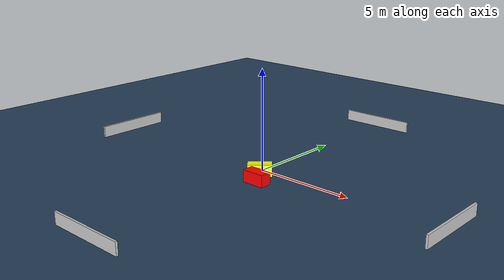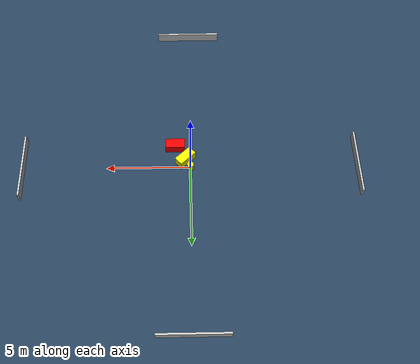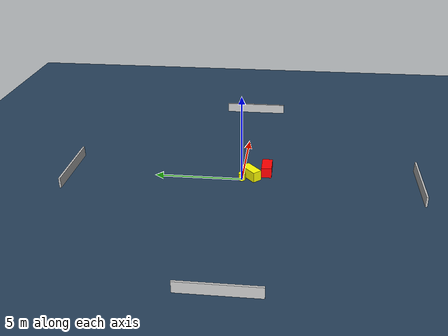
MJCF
<?xml version="1.0" ?>
<mujoco model="generated_environment">
  <option timestep="0.01" integrator="RK4" cone="elliptic"/>
  <default>
    <geom density="1"/>
  </default>
  <asset>
    <texture builtin="gradient" height="3072" name="skybox" rgb1="0.3 0.5 0.7" rgb2="0 0 0" type="skybox" width="512"/>
    <texture builtin="checker" height="300" name="groundplane" rgb1="0.2 0.3 0.4" rgb2="0.1 0.2 0.3" type="2d" width="300"/>
    <material name="groundplane" reflectance="0.2" texrepeat="5 5" texture="groundplane"/>
  </asset>
  <worldbody>
    <light dir="0 0 -1" directional="true" pos="0 0 1.5"/>
    <geom condim="3" friction="0.5 0.005 0.001" material="groundplane" name="floor" pos="0 0 0" size="0 0 0.05" type="plane"/>
    <body name="walls">
      <geom name="wall_1" condim="4" pos="-10.0 0.0 0.3" rgba="0.800000011920929 0.800000011920929 0.800000011920929 1.0" size="0.05 2.0 0.3" type="box"/>
      <geom name="wall_2" condim="4" pos="10.0 0.0 0.3" rgba="0.800000011920929 0.800000011920929 0.800000011920929 1.0" size="0.05 2.0 0.3" type="box"/>
      <geom name="wall_3" condim="4" pos="0.0 -10.0 0.3" rgba="0.800000011920929 0.800000011920929 0.800000011920929 1.0" size="2.0 0.05 0.3" type="box"/>
      <geom name="wall_4" condim="4" pos="0.0 10.0 0.3" rgba="0.800000011920929 0.800000011920929 0.800000011920929 1.0" size="2.0 0.05 0.3" type="box"/>
    </body>
    <body name="robot">
      <joint name="joint_x" type="slide" pos="0 0 0" axis="1 0 0"/>
      <joint name="joint_y" type="slide" pos="0 0 0" axis="0 1 0"/>
      <geom name="robot" type="cylinder" pos="0.0 0.0 0.2" size="0.2 0.2 0.0" mass="5.0" friction="1.0 0.005 0.0001" condim="4" rgba="1.0 1.0 0.0 1.0"/>
    </body>
    <body name="obstacle_1_movable">
      <geom name="obstacle_1_movable" condim="4" pos="0.3027557377142045 -0.4985502438031038 0.3" euler="0 0 222.35431199066247" friction="0.0 0.005 0.001" rgba="1.0 1.0 0.0 1.0" size="0.586577719398318 0.27533099493149116 0.3" type="box" mass="0.1"/>
      <joint type="free"/>
    </body>
    <body name="obstacle_2_static">
      <geom name="obstacle_2_static" condim="4" pos="0.9046031231539567 -1.3736486280836495 0.3" euler="0 0 270.22436218741717" friction="0.0 0.005 0.001" rgba="1.0 0.0 0.0 1.0" size="0.29505921559574755 0.57852677692687 0.3" type="box"/>
    </body>
  </worldbody>
  <actuator>
    <motor name="actuator_x" joint="joint_x" gear="1" ctrlrange="-1 1"/>
    <motor name="actuator_y" joint="joint_y" gear="1" ctrlrange="-1 1"/>
  </actuator>
</mujoco>
